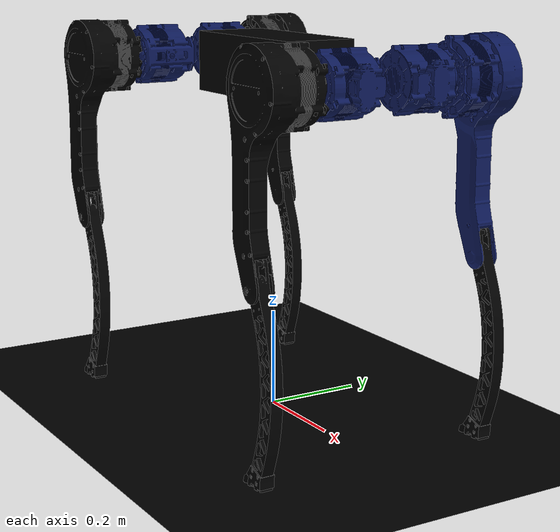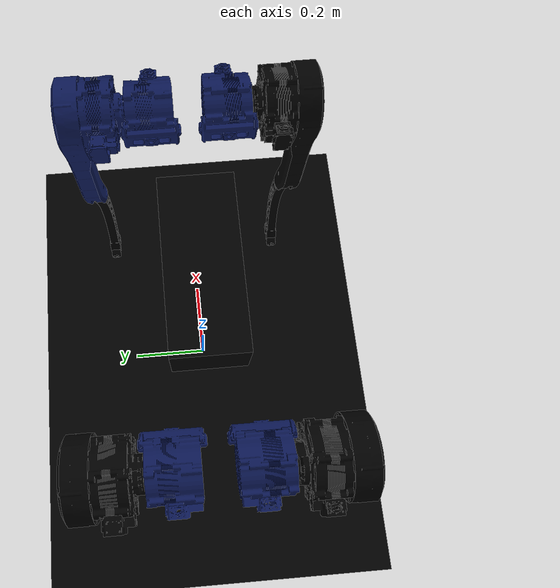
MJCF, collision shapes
<mujoco model="Pongbot_R2_no_link_ver2">
  <default>
    <joint limited="true" damping="0.2" armature="0.01" frictionloss="0.02" />
    <geom condim="4" contype="1" conaffinity="15" friction="3.0 0.02 0.002" solref="0.001 2" rgba="0 0 0 1" />
    <motor ctrllimited="true" />
    <equality solref="0.001 2" />
    <default class="visualgeom">
      <geom material="visualgeom" condim="1" contype="0" conaffinity="0" />
    </default>
  </default>

  <compiler angle="radian" />

  <asset>
    <mesh name="BODY"   content_type="model/stl"  file="BODY.STL" />
    <mesh name="FL_HIP"   content_type="model/stl" file="FL_HIP.STL" />
    <mesh name="FL_THIGH" content_type="model/stl" file="FL_THIGH.STL" />
    <mesh name="FL_CALF"  content_type="model/stl" file="FL_CALF.STL" />
    <mesh name="FL_TIP"   content_type="model/stl" file="FL_TIP.STL" />
    <mesh name="FR_HIP"   content_type="model/stl" file="FR_HIP.STL" />
    <mesh name="FR_THIGH" content_type="model/stl" file="FR_THIGH.STL" />
    <mesh name="FR_CALF"  content_type="model/stl" file="FR_CALF.STL" />
    <mesh name="FR_TIP"   content_type="model/stl" file="FR_TIP.STL" />
    <mesh name="RL_HIP"   content_type="model/stl" file="RL_HIP.STL" />
    <mesh name="RL_THIGH" content_type="model/stl" file="RL_THIGH.STL" />
    <mesh name="RL_CALF"  content_type="model/stl" file="RL_CALF.STL" />
    <mesh name="RL_TIP"   content_type="model/stl" file="RL_TIP.STL" />
    <mesh name="RR_HIP"   content_type="model/stl" file="RR_HIP.STL" />
    <mesh name="RR_THIGH" content_type="model/stl" file="RR_THIGH.STL" />
    <mesh name="RR_CALF"  content_type="model/stl" file="RR_CALF.STL" />
    <mesh name="RR_TIP"   content_type="model/stl" file="RR_TIP.STL" />
    <material name="matplane" rgba="0.5 0.5 0.5 1" reflectance="0.25" texuniform="true" />
    <material name="visualgeom" rgba="0 0 0 1" />
  </asset>

  <worldbody>

    <light directional="true" diffuse="0.4 0.4 0.4" specular="0.1 0.1 0.1" pos="0 0 5.0" dir="0 0 -1" castshadow="false" />
    <light directional="true" diffuse="0.6 0.6 0.6" specular="0.2 0.2 0.2" pos="0 0 4" dir="0 0 -1" />
    <geom name="ground" type="plane" pos="0 0 0" size="100 100 0.001" quat="1 0 0 0" material="matplane" condim="4" conaffinity="15" friction="3.0 0.02 0.002" />
    <camera name="fixed" pos="0 -3.0 0.9596613675031885" xyaxes="1 0 0 0 0 1" />
    <camera name="track" mode="trackcom" pos="0 -3.0 0.9596613675031885" xyaxes="1 0 0 0 0 1" />

    <body name="root" pos="0.00000000 0.00000000 0.71620758" quat="1 0 0 0">
      <freejoint name="root" />
      <site name="imu_site" size="0.01" pos="0 0 0" />
      <geom name="BODY_visual" type="mesh" mesh="BODY" rgba="0 0 0 1" contype="0" conaffinity="0" density="0" group="1" class="visualgeom" />
      <geom name="BODY_collision" type="box" rgba="0 0 0 1" size="0.178 0.075 0.062" />

      <body name="FL_HIP" pos="0.36749 0.081 0.00019242" quat="1.0 0.0 0.0 0.0">
        <joint name="FL_HR_JOINT"   range="-0.6 0.6" axis="1 0 0" />
        <inertial pos="-0.001633 -0.0018387 -2.218E-05" quat="1.0 0.0 0.0 0.0" mass="2.4769" diaginertia="0.0039206 0.004642 0.004991" />
        <geom type="mesh" rgba="0.05 0.10 0.35 1" mesh="FL_HIP" contype="1" conaffinity="0" density="0" group="1" class="visualgeom" />
        <geom type="mesh" rgba="0.05 0.10 0.35 1" mesh="FL_HIP" />

        <body name="FL_THIGH" pos="0 0.1682 0" quat="1.0 0.0 0.0 0.0">
          <joint name="FL_HP_JOINT"   range="-1.2 1.2" axis="0 1 0" />
          <inertial pos="-0.0110933 -0.02855367 -0.06409305" quat="1.0 0.0 0.0 0.0" mass="4.33155381" diaginertia="0.06226412 0.06252656 0.01358764" />
          <geom type="mesh" rgba="0.05 0.10 0.35 1" mesh="FL_THIGH" contype="1" conaffinity="0" density="0" group="1" class="visualgeom" />
          <geom type="mesh" rgba="0.05 0.10 0.35 1" mesh="FL_THIGH" />

          <body name="FL_CALF" pos="0 0 -0.35" quat="1.0 0.0 0.0 0.0">
            <joint name="FL_KN_JOINT"   range="-2.0 0.2" axis="0 1 0" />
            <inertial pos="0.02346125 -4.502E-05 -0.17184355" quat="1.0 0.0 0.0 0.0" mass="1.8509" diaginertia="0.02961457 0.03023038 0.00079209" />
            <geom type="mesh" rgba="0 0 0 1" mesh="FL_CALF" contype="1" conaffinity="0" density="0" group="1" class="visualgeom" />
            <geom type="mesh" rgba="0 0 0 1" mesh="FL_CALF" />

            <body name="FL_TIP" pos="0 0 -0.3664" quat="1.0 0.0 0.0 0.0">
              <inertial pos="-0.0039268 2.0792E-06 -0.010799" quat="1.0 0.0 0.0 0.0" mass="0.049101" diaginertia="1.0232e-05 2.5784e-05 2.1192e-05" />
              <geom name="FL_TIP_collision" pos="0 0 0" quat="1.0 0.0 0.0 0.0" type="mesh" mesh="FR_TIP" friction="5.0 0.03 0.003" condim="4" />
              <geom name="FL_TIP_visual" pos="0 0 0" quat="1.0 0.0 0.0 0.0" material="" type="mesh" mesh="FR_TIP" class="visualgeom" />

            </body>
          </body>
        </body>
      </body>
      <body name="FR_HIP" pos="0.36749 -0.081 0.00019242" quat="1.0 0.0 0.0 0.0">
        <joint name="FR_HR_JOINT"   range="-0.6 0.6" axis="1 0 0" />
        <inertial pos="-0.001633 0.0018387 2.512E-05" quat="1.0 0.0 0.0 0.0" mass="2.4769" diaginertia="0.0039206 0.004642 0.004991" />
        <geom name="FR_HIP_collision" pos="0 0 0" quat="1.0 0.0 0.0 0.0" type="mesh" mesh="FR_HIP" rgba="0.05 0.10 0.35 1" />
        <geom name="FR_HIP_visual" pos="0 0 0" quat="1.0 0.0 0.0 0.0" material="" type="mesh" mesh="FR_HIP" class="visualgeom" rgba="0.05 0.10 0.35 1" />
        <body name="FR_THIGH" pos="0 -0.1682 0" quat="1.0 0.0 0.0 0.0">
          <joint name="FR_HP_JOINT"   range="-1.2 1.2" axis="0 1 0" />
          <inertial pos="-0.011245 0.028554 -0.064003" quat="1.0 0.0 0.0 0.0" mass="4.3316" diaginertia="0.062295 0.062562 0.013592" />
          <geom name="FR_THIGH_collision" pos="0 0 0" quat="1.0 0.0 0.0 0.0" type="mesh" mesh="FR_THIGH"  />
          <geom name="FR_THIGH_visual" pos="0 0 0" quat="1.0 0.0 0.0 0.0" material="" rgba="0.05 0.10 0.35 1" type="mesh" mesh="FR_THIGH" class="visualgeom" />
          <body name="FR_CALF" pos="0 0 -0.35" quat="1.0 0.0 0.0 0.0">
            <joint name="FR_KN_JOINT"   range="-2.0 0.2" axis="0 1 0" />
            <inertial pos="0.02346125 -4.502E-05 -0.17184355" quat="1.0 0.0 0.0 0.0" mass="1.8509" diaginertia="0.02961457 0.03023038 0.00079209" />
            <geom name="FR_CALF_collision" pos="0 0 0" quat="1.0 0.0 0.0 0.0" type="mesh" mesh="FR_CALF"  />
            <geom name="FR_CALF_visual" pos="0 0 0" quat="1.0 0.0 0.0 0.0" material="" type="mesh" mesh="FR_CALF" class="visualgeom" />

            <body name="FR_TIP" pos="0 0 -0.3664" quat="1.0 0.0 0.0 0.0">
              <inertial pos="-0.0039268 2.0792E-06 -0.010799" quat="1.0 0.0 0.0 0.0" mass="0.049101" diaginertia="1.0232e-05 2.5784e-05 2.1192e-05" />
              <geom name="FR_TIP_collision" pos="0 0 0" quat="1.0 0.0 0.0 0.0" type="mesh" mesh="FR_TIP" friction="5.0 0.03 0.003" condim="4" />
              <geom name="FR_TIP_visual" pos="0 0 0" quat="1.0 0.0 0.0 0.0" material="" type="mesh" mesh="FR_TIP" class="visualgeom" />
            </body>
          </body>
        </body>
      </body>
      <body name="RL_HIP" pos="-0.36749 0.081 0.00019242" quat="1.0 0.0 0.0 0.0">
        <joint name="RL_HR_JOINT"   range="-0.6 0.6" axis="1 0 0" />
        <inertial pos="0.001633 -0.0018387 2.512E-05" quat="1.0 0.0 0.0 0.0" mass="2.4769" diaginertia="0.0039206 0.004642 0.004991" />
        <geom name="RL_HIP_collision" pos="0 0 0" quat="1.0 0.0 0.0 0.0" type="mesh" mesh="RL_HIP" rgba="0.05 0.10 0.35 1" />
        <geom name="RL_HIP_visual" pos="0 0 0" quat="1.0 0.0 0.0 0.0" material="" type="mesh" mesh="RL_HIP" class="visualgeom" rgba="0.05 0.10 0.35 1" />
        <body name="RL_THIGH" pos="0 0.1682 0" quat="1.0 0.0 0.0 0.0">
          <joint name="RL_HP_JOINT"   range="-1.2 1.2" axis="0 1 0" />
          <inertial pos="-0.0110933 -0.02855367 -0.06409305" quat="1.0 0.0 0.0 0.0" mass="4.33155381" diaginertia="0.06226412 0.06252656 0.01358764" />
          <geom name="RL_THIGH_collision" pos="0 0 0" quat="1.0 0.0 0.0 0.0" type="mesh" mesh="RL_THIGH"  />
          <geom name="RL_THIGH_visual" pos="0 0 0" quat="1.0 0.0 0.0 0.0" material="" rgba="0.05 0.10 0.35 1" type="mesh" mesh="RL_THIGH" class="visualgeom" />
          <body name="RL_CALF" pos="0 0 -0.35" quat="1.0 0.0 0.0 0.0">
            <joint name="RL_KN_JOINT"   range="-2.0 0.2" axis="0 1 0" />
            <inertial pos="0.023461 -4.502E-05 -0.17184" quat="1.0 0.0 0.0 0.0" mass="1.8509" diaginertia="0.029615 0.03023 0.00079209" />
            <geom name="RL_CALF_collision" pos="0 0 0" quat="1.0 0.0 0.0 0.0" type="mesh" mesh="RL_CALF"  />
            <geom name="RL_CALF_visual" pos="0 0 0" quat="1.0 0.0 0.0 0.0" material="" type="mesh" mesh="RL_CALF" class="visualgeom" />
            <body name="RL_TIP" pos="0 0 -0.3664" quat="1.0 0.0 0.0 0.0">
              <inertial pos="-0.0039268 2.0792E-06 -0.010799" quat="1.0 0.0 0.0 0.0" mass="0.049101" diaginertia="1.0232e-05 2.5784e-05 2.1192e-05" />
              <geom name="RL_TIP_collision" pos="0 0 0" quat="1.0 0.0 0.0 0.0" type="mesh" mesh="RL_TIP" friction="5.0 0.03 0.003" condim="4" />
              <geom name="RL_TIP_visual" pos="0 0 0" quat="1.0 0.0 0.0 0.0" material="" type="mesh" mesh="RL_TIP" class="visualgeom" />
            </body>
          </body>
        </body>
      </body>
      <body name="RR_HIP" pos="-0.36749 -0.081 0.00019242" quat="1.0 0.0 0.0 0.0">
        <joint name="RR_HR_JOINT"   range="-0.6 0.6" axis="1 0 0" />
        <inertial pos="0.001633 0.0018387 -2.218E-05" quat="1.0 0.0 0.0 0.0" mass="2.4769" diaginertia="0.0039206 0.004642 0.004991" />
        <geom name="RR_HIP_collision" pos="0 0 0" quat="1.0 0.0 0.0 0.0" type="mesh" mesh="RR_HIP" rgba="0.05 0.10 0.35 1" />
        <geom name="RR_HIP_visual" pos="0 0 0" quat="1.0 0.0 0.0 0.0" material="" type="mesh" mesh="RR_HIP" class="visualgeom" rgba="0.05 0.10 0.35 1" />
        <body name="RR_THIGH" pos="0 -0.1682 0" quat="1.0 0.0 0.0 0.0">
          <joint name="RR_HP_JOINT"   range="-1.2 1.2" axis="0 1 0" />
          <inertial pos="-0.01124497 0.02855368 -0.06400328" quat="1.0 0.0 0.0 0.0" mass="4.33155381" diaginertia="0.06229531 0.06256169 0.01359159" />
          <geom name="RR_THIGH_collision" pos="0 0 0" quat="1.0 0.0 0.0 0.0" type="mesh" mesh="RR_THIGH"  />
          <geom name="RR_THIGH_visual" pos="0 0 0" quat="1.0 0.0 0.0 0.0" material="" rgba="0.05 0.10 0.35 1" type="mesh" mesh="RR_THIGH" class="visualgeom" />
          <body name="RR_CALF" pos="0 0 -0.35" quat="1.0 0.0 0.0 0.0">
            <joint name="RR_KN_JOINT"   range="-2.0 0.2" axis="0 1 0" />
            <inertial pos="0.023461 -4.502E-05 -0.17184" quat="1.0 0.0 0.0 0.0" mass="1.8509" diaginertia="0.029615 0.03023 0.00079209" />
            <geom name="RR_CALF_collision" pos="0 0 0" quat="1.0 0.0 0.0 0.0" type="mesh" mesh="RR_CALF"  />
            <geom name="RR_CALF_visual" pos="0 0 0" quat="1.0 0.0 0.0 0.0" material="" type="mesh" mesh="RR_CALF" class="visualgeom" />
            <body name="RR_TIP" pos="0 0 -0.3664" quat="1.0 0.0 0.0 0.0">
              <inertial pos="-0.0039268 -2.0792E-06 -0.010799" quat="1.0 0.0 0.0 0.0" mass="0.049101" diaginertia="1.0232e-05 2.5784e-05 2.1192e-05" />
              <geom name="RR_TIP_collision" pos="0 0 0" quat="1.0 0.0 0.0 0.0" type="mesh" mesh="RR_TIP" friction="5.0 0.03 0.003" condim="4" />
              <geom name="RR_TIP_visual" pos="0 0 0" quat="1.0 0.0 0.0 0.0" material="" type="mesh" mesh="RR_TIP" class="visualgeom" />
            </body>
          </body>
        </body>
      </body>
      <site name="BODY_site" pos="0 0 0" quat="1 0 0 0" />
      <camera name="front_camera" mode="track" fovy="90.0" quat="4.329780281177467e-17 4.329780281177466e-17 0.7071067811865475 0.7071067811865476" pos="0.0 2.0 0.5" />
      <camera name="side_camera" mode="track" fovy="90.0" quat="-0.5 -0.4999999999999999 0.5 0.5000000000000001" pos="-2.0 0.0 0.5" />
    </body>
  </worldbody>

  <actuator>
    <motor name="FL_HR_JOINT" joint="FL_HR_JOINT" ctrllimited="true" ctrlrange="-120 120" />
    <motor name="FL_HP_JOINT" joint="FL_HP_JOINT" ctrllimited="true" ctrlrange="-120 120" />
    <motor name="FL_KN_JOINT" joint="FL_KN_JOINT"  ctrllimited="true" ctrlrange="-150 150"/>
    <motor name="FR_HR_JOINT" joint="FR_HR_JOINT" ctrllimited="true" ctrlrange="-120 120"  />
    <motor name="FR_HP_JOINT" joint="FR_HP_JOINT" ctrllimited="true" ctrlrange="-120 120"/>
    <motor name="FR_KN_JOINT" joint="FR_KN_JOINT" ctrllimited="true" ctrlrange="-150 150"/>
    <motor name="RL_HR_JOINT" joint="RL_HR_JOINT" ctrllimited="true" ctrlrange="-120 120" />
    <motor name="RL_HP_JOINT" joint="RL_HP_JOINT"  ctrllimited="true" ctrlrange="-120 120"/>
    <motor name="RL_KN_JOINT" joint="RL_KN_JOINT" ctrllimited="true" ctrlrange="-150 150" />
    <motor name="RR_HR_JOINT" joint="RR_HR_JOINT" ctrllimited="true" ctrlrange="-120 120" />
    <motor name="RR_HP_JOINT" joint="RR_HP_JOINT"  ctrllimited="true" ctrlrange="-120 120"/>
    <motor name="RR_KN_JOINT" joint="RR_KN_JOINT" ctrllimited="true" ctrlrange="-150 150" />
  </actuator>

  <sensor>
    <gyro name="imu_gyro" site="imu_site" noise="0.005" />
    <actuatorpos name="FL_HR_JOINT_p" actuator="FL_HR_JOINT" />
    <actuatorvel name="FL_HR_JOINT_v" actuator="FL_HR_JOINT" />
    <actuatorfrc name="FL_HR_JOINT_f" actuator="FL_HR_JOINT" noise="0.001" />
    <actuatorpos name="FL_HP_JOINT_p" actuator="FL_HP_JOINT" />
    <actuatorvel name="FL_HP_JOINT_v" actuator="FL_HP_JOINT" />
    <actuatorfrc name="FL_HP_JOINT_f" actuator="FL_HP_JOINT" noise="0.001" />
    <actuatorpos name="FL_KN_JOINT_p" actuator="FL_KN_JOINT" />
    <actuatorvel name="FL_KN_JOINT_v" actuator="FL_KN_JOINT" />
    <actuatorfrc name="FL_KN_JOINT_f" actuator="FL_KN_JOINT" noise="0.001" />
    <actuatorpos name="FR_HR_JOINT_p" actuator="FR_HR_JOINT" />
    <actuatorvel name="FR_HR_JOINT_v" actuator="FR_HR_JOINT" />
    <actuatorfrc name="FR_HR_JOINT_f" actuator="FR_HR_JOINT" noise="0.001" />
    <actuatorpos name="FR_HP_JOINT_p" actuator="FR_HP_JOINT" />
    <actuatorvel name="FR_HP_JOINT_v" actuator="FR_HP_JOINT" />
    <actuatorfrc name="FR_HP_JOINT_f" actuator="FR_HP_JOINT" noise="0.001" />
    <actuatorpos name="FR_KN_JOINT_p" actuator="FR_KN_JOINT" />
    <actuatorvel name="FR_KN_JOINT_v" actuator="FR_KN_JOINT" />
    <actuatorfrc name="FR_KN_JOINT_f" actuator="FR_KN_JOINT" noise="0.001" />
    <actuatorpos name="RL_HR_JOINT_p" actuator="RL_HR_JOINT" />
    <actuatorvel name="RL_HR_JOINT_v" actuator="RL_HR_JOINT" />
    <actuatorfrc name="RL_HR_JOINT_f" actuator="RL_HR_JOINT" noise="0.001" />
    <actuatorpos name="RL_HP_JOINT_p" actuator="RL_HP_JOINT" />
    <actuatorvel name="RL_HP_JOINT_v" actuator="RL_HP_JOINT" />
    <actuatorfrc name="RL_HP_JOINT_f" actuator="RL_HP_JOINT" noise="0.001" />
    <actuatorpos name="RL_KN_JOINT_p" actuator="RL_KN_JOINT" />
    <actuatorvel name="RL_KN_JOINT_v" actuator="RL_KN_JOINT" />
    <actuatorfrc name="RL_KN_JOINT_f" actuator="RL_KN_JOINT" noise="0.001" />
    <actuatorpos name="RR_HR_JOINT_p" actuator="RR_HR_JOINT" />
    <actuatorvel name="RR_HR_JOINT_v" actuator="RR_HR_JOINT" />
    <actuatorfrc name="RR_HR_JOINT_f" actuator="RR_HR_JOINT" noise="0.001" />
    <actuatorpos name="RR_HP_JOINT_p" actuator="RR_HP_JOINT" />
    <actuatorvel name="RR_HP_JOINT_v" actuator="RR_HP_JOINT" />
    <actuatorfrc name="RR_HP_JOINT_f" actuator="RR_HP_JOINT" noise="0.001" />
    <actuatorpos name="RR_KN_JOINT_p" actuator="RR_KN_JOINT" />
    <actuatorvel name="RR_KN_JOINT_v" actuator="RR_KN_JOINT" />
    <actuatorfrc name="RR_KN_JOINT_f" actuator="RR_KN_JOINT" noise="0.001" />

  </sensor>
</mujoco>
